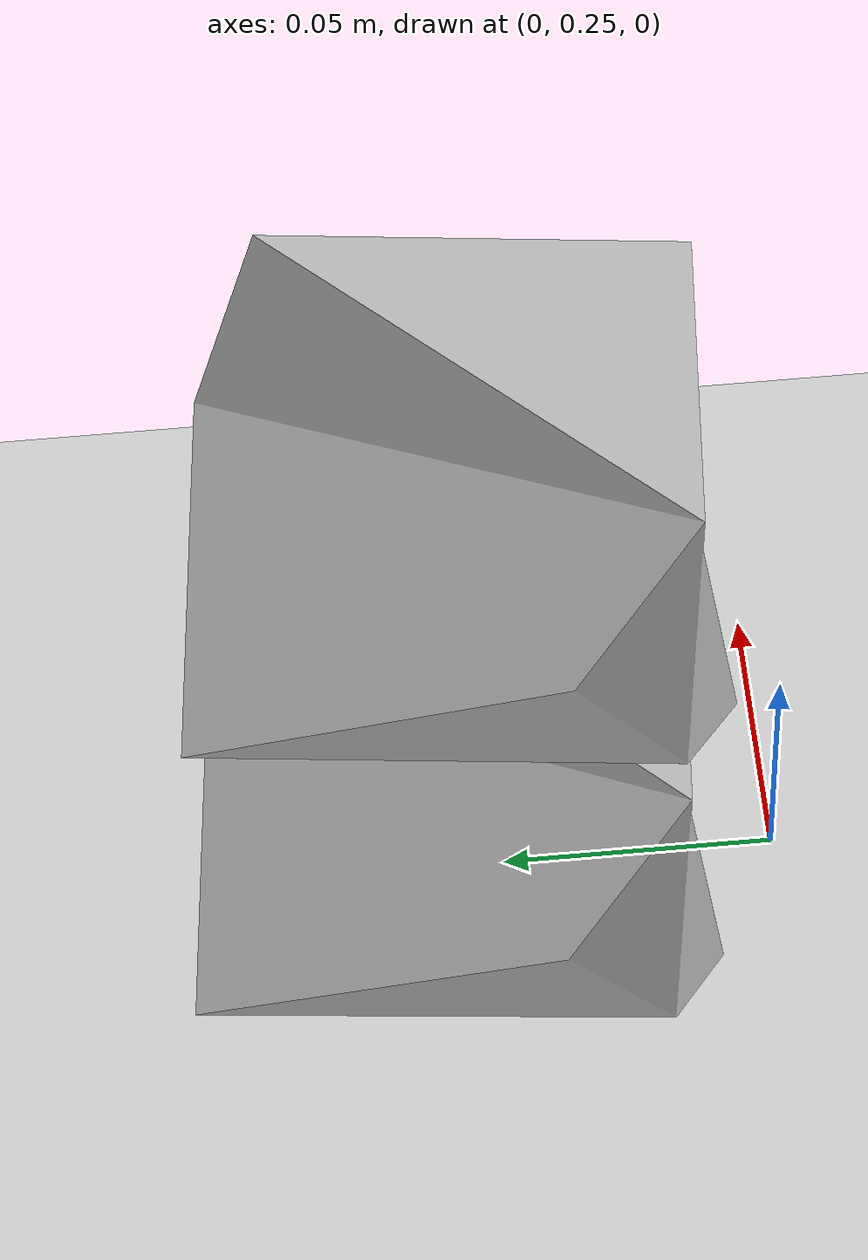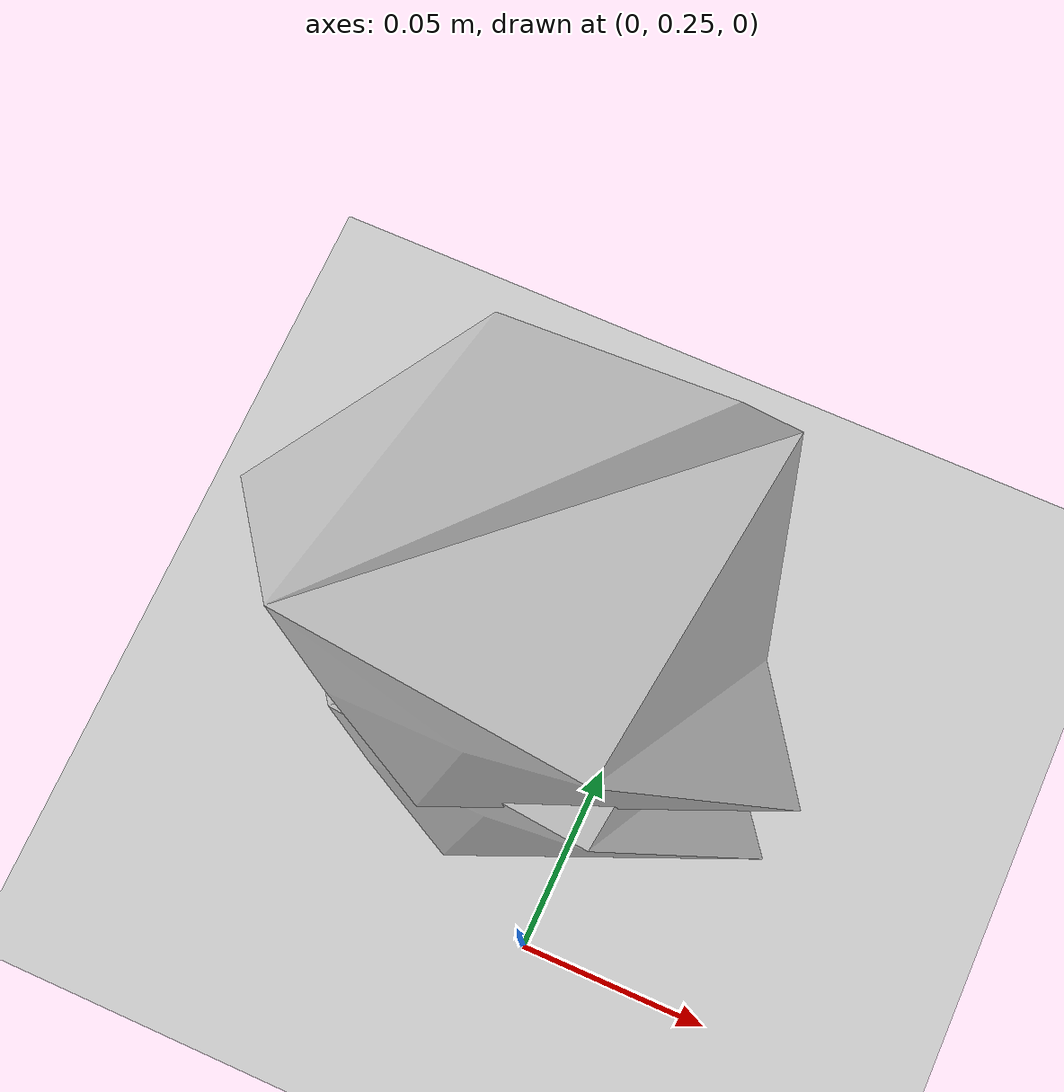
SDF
<sdf version="1.5">
 <world name="default">
  <light name="sun" type="directional">
   <pose>0 0 10 0 -0 0</pose>
   <diffuse>0.8 0.8 0.8 1</diffuse>
   <specular>0.2 0.2 0.2 1</specular>
   <attenuation>
    <range>1000</range>
    <constant>0.9</constant>
    <linear>0.01</linear>
    <quadratic>0.001</quadratic>
   </attenuation>
   <direction>-0.5 0.1 -0.9</direction>
  </light>
  <model name="ground_plane">
   <static>1</static>
   <link name="link">
    <collision name="collision">
     <geometry><plane><normal>0 0 1</normal><size>100 100</size></plane></geometry>
     <surface><friction><ode><mu>100</mu><mu2>50</mu2></ode></friction></surface>
    </collision>
    <visual name="visual">
     <cast_shadows>0</cast_shadows>
     <geometry><plane><normal>0 0 1</normal><size>100 100</size></plane></geometry>
     <material>
      <script><uri>file://media/materials/scripts/gazebo.material</uri><name>Gazebo/Grey</name></script>
     </material>
    </visual>
   </link>
  </model>
  <physics name="default_physics" default="0" type="ode">
   <max_step_size>0.001</max_step_size>
   <real_time_factor>1</real_time_factor>
   <real_time_update_rate>1000</real_time_update_rate>
   <gravity>0 0 -9.8</gravity>
   <magnetic_field>6e-06 2.3e-05 -4.2e-05</magnetic_field>
  </physics>
  <scene><ambient>0.4 0.4 0.4 1</ambient><background>0.7 0.7 0.7 1</background><shadows>1</shadows></scene>
  <spherical_coordinates>
   <surface_model>EARTH_WGS84</surface_model>
   <latitude_deg>0</latitude_deg>
   <longitude_deg>0</longitude_deg>
   <elevation>0</elevation>
   <heading_deg>0</heading_deg>
  </spherical_coordinates>
  <model name="1_poly_config_2">
   <link name="base_link">
    <inertial>
     <pose>-0.016006 0.004918 0.008051 0 -0 0</pose>
     <mass>1</mass>
     <inertia>
      <ixx>0.0003455</ixx>
      <ixy>1.48e-06</ixy>
      <ixz>1.628e-05</ixz>
      <iyy>0.00038334</iyy>
      <iyz>1.259e-05</iyz>
      <izz>0.00036534</izz>
     </inertia>
    </inertial>
    <collision name="base_link_inertia_collision">
     <geometry>
      <mesh>
       <scale>1 1 1</scale>
       <uri>/home/yoshidah/catkin_ws/src/urdf_models/urdf_models/models/polygons/2_poly_config_2.dae</uri>
      </mesh>
     </geometry>
    </collision>
    <visual name="base_link_inertia_visual">
     <geometry>
      <mesh>
       <scale>1 1 1</scale>
       <uri>/home/yoshidah/catkin_ws/src/urdf_models/urdf_models/models/polygons/2_poly_config_2.dae</uri>
      </mesh>
     </geometry>
    </visual>
   </link>
   <pose>0 0.3 0.04 0 -0 0</pose>
  </model>
  <model name="2_poly">
   <link name="base_link">
    <inertial>
     <pose>-0.016006 0.004918 0.008051 0 -0 0</pose>
     <mass>1</mass>
     <inertia>
      <ixx>0.0003455</ixx>
      <ixy>1.48e-06</ixy>
      <ixz>1.628e-05</ixz>
      <iyy>0.00038334</iyy>
      <iyz>1.259e-05</iyz>
      <izz>0.00036534</izz>
     </inertia>
    </inertial>
    <collision name="base_link_inertia_collision">
     <geometry>
      <mesh>
       <scale>1 1 1</scale>
       <uri>/home/yoshidah/catkin_ws/src/urdf_models/urdf_models/models/polygons/2_poly_config_2.dae</uri>
      </mesh>
     </geometry>
    </collision>
    <visual name="base_link_inertia_visual">
     <geometry>
      <mesh>
       <scale>1 1 1</scale>
       <uri>/home/yoshidah/catkin_ws/src/urdf_models/urdf_models/models/polygons/2_poly_config_2.dae</uri>
      </mesh>
     </geometry>
    </visual>
   </link>
   <pose>0 0.3 0.12 0 -0 0</pose>
  </model>
 </world>
</sdf>
